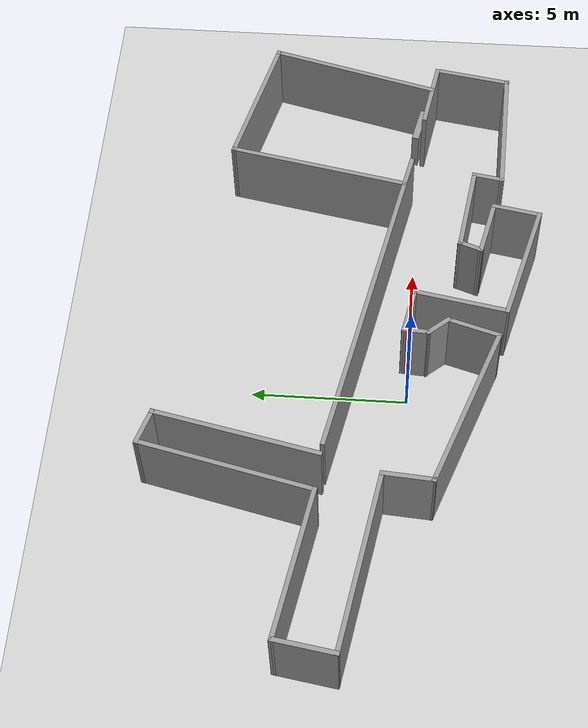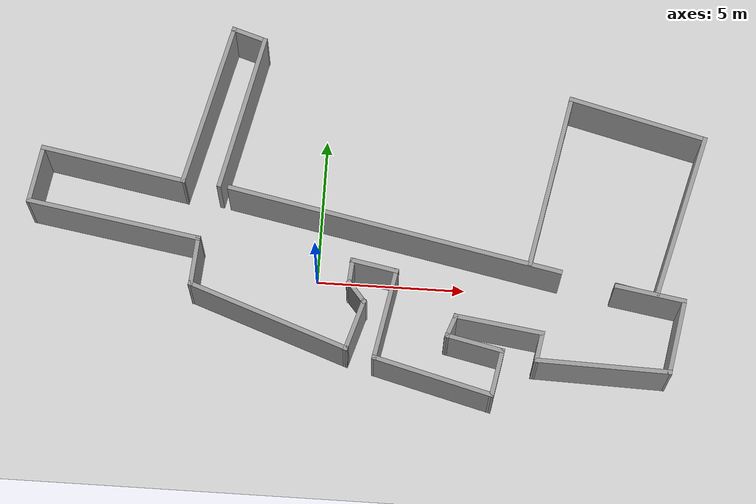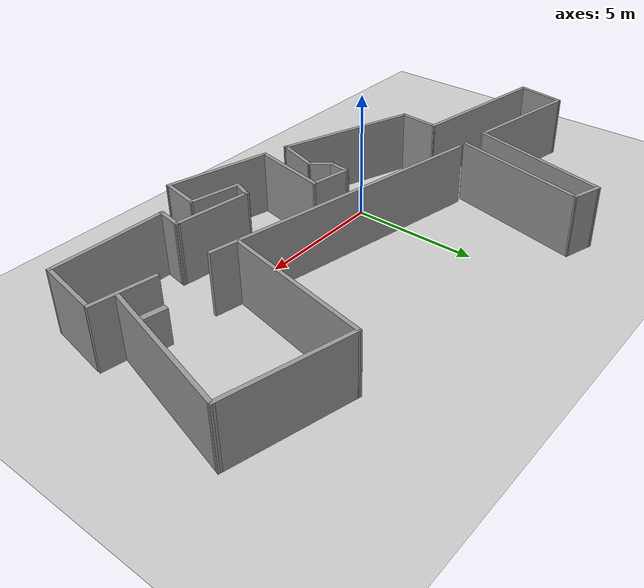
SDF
<sdf version="1.4">
 <world name="default">
  <include><uri>model://sun</uri></include>
  <include><uri>model://ground_plane</uri></include>
  <include><uri>model://sanquirico_simplified</uri><pose>1.5 2 0  0 0 0</pose></include>
  <include><uri>model://Door</uri><pose>10.6 0.03 0.72 0.0 0.0 1.37</pose></include>
 </world>
</sdf>

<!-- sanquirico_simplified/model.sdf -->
<sdf version='1.6'>
  <model name='sanquirico_simplified'>
    <pose frame=''>1.73523 3.04751 0 0 -0 0</pose>
    <link name='Wall_1'>
      <collision name='Wall_1_Collision'>
        <geometry>
          <box>
            <size>11.5 0.15 2.5</size>
          </box>
        </geometry>
        <pose frame=''>0 0 1.25 0 -0 0</pose>
      </collision>
      <visual name='Wall_1_Visual'>
        <pose frame=''>0 0 1.25 0 -0 0</pose>
        <geometry>
          <box>
            <size>11.5 0.15 2.5</size>
          </box>
        </geometry>
        <material>
          <script>
            <uri>file://media/materials/scripts/gazebo.material</uri>
            <name>Gazebo/Grey</name>
          </script>
          <ambient>1 1 1 1</ambient>
        </material>
        <meta>
          <layer>0</layer>
        </meta>
      </visual>
      <pose frame=''>1.00689 -0.659033 0 0 -0 2.94568</pose>
    </link>
    <link name='Wall_10'>
      <collision name='Wall_10_Collision'>
        <geometry>
          <box>
            <size>1.84355 0.15 2.5</size>
          </box>
        </geometry>
        <pose frame=''>0 0 1.25 0 -0 0</pose>
      </collision>
      <visual name='Wall_10_Visual'>
        <pose frame=''>0 0 1.25 0 -0 0</pose>
        <geometry>
          <box>
            <size>1.84355 0.15 2.5</size>
          </box>
        </geometry>
        <material>
          <script>
            <uri>file://media/materials/scripts/gazebo.material</uri>
            <name>Gazebo/Grey</name>
          </script>
          <ambient>1 1 1 1</ambient>
        </material>
        <meta>
          <layer>0</layer>
        </meta>
      </visual>
      <pose frame=''>-0.094359 -3.99337 0 0 -0 1.27761</pose>
    </link>
    <link name='Wall_11'>
      <collision name='Wall_11_Collision'>
        <geometry>
          <box>
            <size>0.952957 0.15 2.5</size>
          </box>
        </geometry>
        <pose frame=''>0 0 1.25 0 -0 0</pose>
      </collision>
      <visual name='Wall_11_Visual'>
        <pose frame=''>0 0 1.25 0 -0 0</pose>
        <geometry>
          <box>
            <size>0.952957 0.15 2.5</size>
          </box>
        </geometry>
        <material>
          <script>
            <uri>file://media/materials/scripts/gazebo.material</uri>
            <name>Gazebo/Grey</name>
          </script>
          <ambient>1 1 1 1</ambient>
        </material>
        <meta>
          <layer>0</layer>
        </meta>
      </visual>
      <pose frame=''>-0.109654 -2.87683 0 0 -0 2.27529</pose>
    </link>
    <link name='Wall_12'>
      <collision name='Wall_12_Collision'>
        <geometry>
          <box>
            <size>0.917199 0.15 2.5</size>
          </box>
        </geometry>
        <pose frame=''>0 0 1.25 0 -0 0</pose>
      </collision>
      <visual name='Wall_12_Visual'>
        <pose frame=''>0 0 1.25 0 -0 0</pose>
        <geometry>
          <box>
            <size>0.917199 0.15 2.5</size>
          </box>
        </geometry>
        <material>
          <script>
            <uri>file://media/materials/scripts/gazebo.material</uri>
            <name>Gazebo/Grey</name>
          </script>
          <ambient>1 1 1 1</ambient>
        </material>
        <meta>
          <layer>0</layer>
        </meta>
      </visual>
      <pose frame=''>-0.339081 -2.18854 0 0 -0 1.49097</pose>
    </link>
    <link name='Wall_13'>
      <collision name='Wall_13_Collision'>
        <geometry>
          <box>
            <size>1.64392 0.15 2.5</size>
          </box>
        </geometry>
        <pose frame=''>0 0 1.25 0 -0 0</pose>
      </collision>
      <visual name='Wall_13_Visual'>
        <pose frame=''>0 0 1.25 0 -0 0</pose>
        <geometry>
          <box>
            <size>1.64392 0.15 2.5</size>
          </box>
        </geometry>
        <material>
          <script>
            <uri>file://media/materials/scripts/gazebo.material</uri>
            <name>Gazebo/Grey</name>
          </script>
          <ambient>1 1 1 1</ambient>
        </material>
        <meta>
          <layer>0</layer>
        </meta>
      </visual>
      <pose frame=''>0.425674 -1.94382 0 0 -0 -0.185348</pose>
    </link>
    <link name='Wall_14'>
      <collision name='Wall_14_Collision'>
        <geometry>
          <box>
            <size>3.16791 0.15 2.5</size>
          </box>
        </geometry>
        <pose frame=''>0 0 1.25 0 -0 0</pose>
      </collision>
      <visual name='Wall_14_Visual'>
        <pose frame=''>0 0 1.25 0 -0 0</pose>
        <geometry>
          <box>
            <size>3.16791 0.15 2.5</size>
          </box>
        </geometry>
        <material>
          <script>
            <uri>file://media/materials/scripts/gazebo.material</uri>
            <name>Gazebo/Grey</name>
          </script>
          <ambient>1 1 1 1</ambient>
        </material>
        <meta>
          <layer>0</layer>
        </meta>
      </visual>
      <pose frame=''>0.884528 -3.5651 0 0 -0 -1.75428</pose>
    </link>
    <link name='Wall_15'>
      <collision name='Wall_15_Collision'>
        <geometry>
          <box>
            <size>4.19358 0.15 2.5</size>
          </box>
        </geometry>
        <pose frame=''>0 0 1.25 0 -0 0</pose>
      </collision>
      <visual name='Wall_15_Visual'>
        <pose frame=''>0 0 1.25 0 -0 0</pose>
        <geometry>
          <box>
            <size>4.19358 0.15 2.5</size>
          </box>
        </geometry>
        <material>
          <script>
            <uri>file://media/materials/scripts/gazebo.material</uri>
            <name>Gazebo/Grey</name>
          </script>
          <ambient>1 1 1 1</ambient>
        </material>
        <meta>
          <layer>0</layer>
        </meta>
      </visual>
      <pose frame=''>2.56699 -5.55347 0 0 -0 -0.252318</pose>
    </link>
    <link name='Wall_16'>
      <collision name='Wall_16_Collision'>
        <geometry>
          <box>
            <size>1.67399 0.15 2.5</size>
          </box>
        </geometry>
        <pose frame=''>0 0 1.25 0 -0 0</pose>
      </collision>
      <visual name='Wall_16_Visual'>
        <pose frame=''>0 0 1.25 0 -0 0</pose>
        <geometry>
          <box>
            <size>1.67399 0.15 2.5</size>
          </box>
        </geometry>
        <material>
          <script>
            <uri>file://media/materials/scripts/gazebo.material</uri>
            <name>Gazebo/Grey</name>
          </script>
          <ambient>1 1 1 1</ambient>
        </material>
        <meta>
          <layer>0</layer>
        </meta>
      </visual>
      <pose frame=''>4.66242 -5.30875 0 0 -0 1.38915</pose>
    </link>
    <link name='Wall_17'>
      <collision name='Wall_17_Collision'>
        <geometry>
          <box>
            <size>2.028 0.15 2.5</size>
          </box>
        </geometry>
        <pose frame=''>0 0 1.25 0 -0 0</pose>
      </collision>
      <visual name='Wall_17_Visual'>
        <pose frame=''>0 0 1.25 0 -0 0</pose>
        <geometry>
          <box>
            <size>2.028 0.15 2.5</size>
          </box>
        </geometry>
        <material>
          <script>
            <uri>file://media/materials/scripts/gazebo.material</uri>
            <name>Gazebo/Grey</name>
          </script>
          <ambient>1 1 1 1</ambient>
        </material>
        <meta>
          <layer>0</layer>
        </meta>
      </visual>
      <pose frame=''>3.88237 -4.36045 0 0 -0 2.92822</pose>
    </link>
    <link name='Wall_18'>
      <collision name='Wall_18_Collision'>
        <geometry>
          <box>
            <size>0.866099 0.15 2.5</size>
          </box>
        </geometry>
        <pose frame=''>0 0 1.25 0 -0 0</pose>
      </collision>
      <visual name='Wall_18_Visual'>
        <pose frame=''>0 0 1.25 0 -0 0</pose>
        <geometry>
          <box>
            <size>0.866099 0.15 2.5</size>
          </box>
        </geometry>
        <material>
          <script>
            <uri>file://media/materials/scripts/gazebo.material</uri>
            <name>Gazebo/Grey</name>
          </script>
          <ambient>1 1 1 1</ambient>
        </material>
        <meta>
          <layer>0</layer>
        </meta>
      </visual>
      <pose frame=''>3.08702 -3.82512 0 0 -0 1.22202</pose>
    </link>
    <link name='Wall_19'>
      <collision name='Wall_19_Collision'>
        <geometry>
          <box>
            <size>3.05285 0.15 2.5</size>
          </box>
        </geometry>
        <pose frame=''>0 0 1.25 0 -0 0</pose>
      </collision>
      <visual name='Wall_19_Visual'>
        <pose frame=''>0 0 1.25 0 -0 0</pose>
        <geometry>
          <box>
            <size>3.05285 0.15 2.5</size>
          </box>
        </geometry>
        <material>
          <script>
            <uri>file://media/materials/scripts/gazebo.material</uri>
            <name>Gazebo/Grey</name>
          </script>
          <ambient>1 1 1 1</ambient>
        </material>
        <meta>
          <layer>0</layer>
        </meta>
      </visual>
      <pose frame=''>4.64713 -3.68747 0 0 -0 -0.137426</pose>
    </link>
    <link name='Wall_2'>
      <collision name='Wall_2_Collision'>
        <geometry>
          <box>
            <size>5.47208 0.15 2.5</size>
          </box>
        </geometry>
        <pose frame=''>0 0 1.25 0 -0 0</pose>
      </collision>
      <visual name='Wall_2_Visual'>
        <pose frame=''>0 0 1.25 0 -0 0</pose>
        <geometry>
          <box>
            <size>5.47208 0.15 2.5</size>
          </box>
        </geometry>
        <material>
          <script>
            <uri>file://media/materials/scripts/gazebo.material</uri>
            <name>Gazebo/Grey</name>
          </script>
          <ambient>1 1 1 1</ambient>
        </material>
        <meta>
          <layer>0</layer>
        </meta>
      </visual>
      <pose frame=''>-4.3617 3.11886 0 0 -0 1.35649</pose>
    </link>
    <link name='Wall_20'>
      <collision name='Wall_20_Collision'>
        <geometry>
          <box>
            <size>1.08037 0.15 2.5</size>
          </box>
        </geometry>
        <pose frame=''>0 0 1.25 0 -0 0</pose>
      </collision>
      <visual name='Wall_20_Visual'>
        <pose frame=''>0 0 1.25 0 -0 0</pose>
        <geometry>
          <box>
            <size>1.08037 0.15 2.5</size>
          </box>
        </geometry>
        <material>
          <script>
            <uri>file://media/materials/scripts/gazebo.material</uri>
            <name>Gazebo/Grey</name>
          </script>
          <ambient>1 1 1 1</ambient>
        </material>
        <meta>
          <layer>0</layer>
        </meta>
      </visual>
      <pose frame=''>6.00839 -4.34516 0 0 -0 -1.73595</pose>
    </link>
    <link name='Wall_21'>
      <collision name='Wall_21_Collision'>
        <geometry>
          <box>
            <size>4.52611 0.15 2.5</size>
          </box>
        </geometry>
        <pose frame=''>0 0 1.25 0 -0 0</pose>
      </collision>
      <visual name='Wall_21_Visual'>
        <pose frame=''>0 0 1.25 0 -0 0</pose>
        <geometry>
          <box>
            <size>4.52611 0.15 2.5</size>
          </box>
        </geometry>
        <material>
          <script>
            <uri>file://media/materials/scripts/gazebo.material</uri>
            <name>Gazebo/Grey</name>
          </script>
          <ambient>1 1 1 1</ambient>
        </material>
        <meta>
          <layer>0</layer>
        </meta>
      </visual>
      <pose frame=''>8.11912 -4.86519 0 0 -0 -0.027965</pose>
    </link>
    <link name='Wall_22'>
      <collision name='Wall_22_Collision'>
        <geometry>
          <box>
            <size>2.4848 0.15 2.5</size>
          </box>
        </geometry>
        <pose frame=''>0 0 1.25 0 -0 0</pose>
      </collision>
      <visual name='Wall_22_Visual'>
        <pose frame=''>0 0 1.25 0 -0 0</pose>
        <geometry>
          <box>
            <size>2.4848 0.15 2.5</size>
          </box>
        </geometry>
        <material>
          <script>
            <uri>file://media/materials/scripts/gazebo.material</uri>
            <name>Gazebo/Grey</name>
          </script>
          <ambient>1 1 1 1</ambient>
        </material>
        <meta>
          <layer>0</layer>
        </meta>
      </visual>
      <pose frame=''>10.5008 -3.77528 0 0 -0 1.40346</pose>
    </link>
    <link name='Wall_24'>
      <collision name='Wall_24_Collision'>
        <geometry>
          <box>
            <size>5.77395 0.15 2.5</size>
          </box>
        </geometry>
        <pose frame=''>0 0 1.25 0 -0 0</pose>
      </collision>
      <visual name='Wall_24_Visual'>
        <pose frame=''>0 0 1.25 0 -0 0</pose>
        <geometry>
          <box>
            <size>5.77395 0.15 2.5</size>
          </box>
        </geometry>
        <material>
          <script>
            <uri>file://media/materials/scripts/gazebo.material</uri>
            <name>Gazebo/Grey</name>
          </script>
          <ambient>1 1 1 1</ambient>
        </material>
        <meta>
          <layer>0</layer>
        </meta>
      </visual>
      <pose frame=''>10.5205 0.42692 0 0 -0 1.3179</pose>
    </link>
    <link name='Wall_25'>
      <collision name='Wall_25_Collision'>
        <geometry>
          <box>
            <size>4.81669 0.15 2.5</size>
          </box>
        </geometry>
        <pose frame=''>0 0 1.25 0 -0 0</pose>
      </collision>
      <visual name='Wall_25_Visual'>
        <pose frame=''>0 0 1.25 0 -0 0</pose>
        <geometry>
          <box>
            <size>4.81669 0.15 2.5</size>
          </box>
        </geometry>
        <material>
          <script>
            <uri>file://media/materials/scripts/gazebo.material</uri>
            <name>Gazebo/Grey</name>
          </script>
          <ambient>1 1 1 1</ambient>
        </material>
        <meta>
          <layer>0</layer>
        </meta>
      </visual>
      <pose frame=''>8.96035 3.71537 0 0 -0 2.89661</pose>
    </link>
    <link name='Wall_26'>
      <collision name='Wall_26_Collision'>
        <geometry>
          <box>
            <size>6.07132 0.15 2.5</size>
          </box>
        </geometry>
        <pose frame=''>0 0 1.25 0 -0 0</pose>
      </collision>
      <visual name='Wall_26_Visual'>
        <pose frame=''>0 0 1.25 0 -0 0</pose>
        <geometry>
          <box>
            <size>6.07132 0.15 2.5</size>
          </box>
        </geometry>
        <material>
          <script>
            <uri>file://media/materials/scripts/gazebo.material</uri>
            <name>Gazebo/Grey</name>
          </script>
          <ambient>1 1 1 1</ambient>
        </material>
        <meta>
          <layer>0</layer>
        </meta>
      </visual>
      <pose frame=''>6.13075 1.37522 0 0 -0 -1.76313</pose>
    </link>
    <link name='Wall_3'>
      <collision name='Wall_3_Collision'>
        <geometry>
          <box>
            <size>1.27229 0.15 2.5</size>
          </box>
        </geometry>
        <pose frame=''>0 0 1.25 0 -0 0</pose>
      </collision>
      <visual name='Wall_3_Visual'>
        <pose frame=''>0 0 1.25 0 -0 0</pose>
        <geometry>
          <box>
            <size>1.27229 0.15 2.5</size>
          </box>
        </geometry>
        <material>
          <script>
            <uri>file://media/materials/scripts/gazebo.material</uri>
            <name>Gazebo/Grey</name>
          </script>
          <ambient>1 1 1 1</ambient>
        </material>
        <meta>
          <layer>0</layer>
        </meta>
      </visual>
      <pose frame=''>-4.33111 5.88727 0 0 -0 2.83708</pose>
    </link>
    <link name='Wall_30'>
      <collision name='Wall_30_Collision'>
        <geometry>
          <box>
            <size>2.41312 0.15 2.5</size>
          </box>
        </geometry>
        <pose frame=''>0 0 1.25 0 -0 0</pose>
      </collision>
      <visual name='Wall_30_Visual'>
        <pose frame=''>0 0 1.25 0 -0 0</pose>
        <geometry>
          <box>
            <size>2.41312 0.15 2.5</size>
          </box>
        </geometry>
        <material>
          <script>
            <uri>file://media/materials/scripts/gazebo.material</uri>
            <name>Gazebo/Grey</name>
          </script>
          <ambient>1 1 1 1</ambient>
        </material>
        <meta>
          <layer>0</layer>
        </meta>
      </visual>
      <pose frame=''>9.58867 -2.31036 0 0 -0 -0.163179</pose>
    </link>
    <link name='Wall_4'>
      <collision name='Wall_4_Collision'>
        <geometry>
          <box>
            <size>5.77436 0.15 2.5</size>
          </box>
        </geometry>
        <pose frame=''>0 0 1.25 0 -0 0</pose>
      </collision>
      <visual name='Wall_4_Visual'>
        <pose frame=''>0 0 1.25 0 -0 0</pose>
        <geometry>
          <box>
            <size>5.77436 0.15 2.5</size>
          </box>
        </geometry>
        <material>
          <script>
            <uri>file://media/materials/scripts/gazebo.material</uri>
            <name>Gazebo/Grey</name>
          </script>
          <ambient>1 1 1 1</ambient>
        </material>
        <meta>
          <layer>0</layer>
        </meta>
      </visual>
      <pose frame=''>-5.50883 3.3177 0 0 -0 -1.80126</pose>
    </link>
    <link name='Wall_5'>
      <collision name='Wall_5_Collision'>
        <geometry>
          <box>
            <size>4.99833 0.15 2.5</size>
          </box>
        </geometry>
        <pose frame=''>0 0 1.25 0 -0 0</pose>
      </collision>
      <visual name='Wall_5_Visual'>
        <pose frame=''>0 0 1.25 0 -0 0</pose>
        <geometry>
          <box>
            <size>4.99833 0.15 2.5</size>
          </box>
        </geometry>
        <material>
          <script>
            <uri>file://media/materials/scripts/gazebo.material</uri>
            <name>Gazebo/Grey</name>
          </script>
          <ambient>1 1 1 1</ambient>
        </material>
        <meta>
          <layer>0</layer>
        </meta>
      </visual>
      <pose frame=''>-8.53726 1.00813 0 0 -0 2.964</pose>
    </link>
    <link name='Wall_6'>
      <collision name='Wall_6_Collision'>
        <geometry>
          <box>
            <size>2.04091 0.15 2.5</size>
          </box>
        </geometry>
        <pose frame=''>0 0 1.25 0 -0 0</pose>
      </collision>
      <visual name='Wall_6_Visual'>
        <pose frame=''>0 0 1.25 0 -0 0</pose>
        <geometry>
          <box>
            <size>2.04091 0.15 2.5</size>
          </box>
        </geometry>
        <material>
          <script>
            <uri>file://media/materials/scripts/gazebo.material</uri>
            <name>Gazebo/Grey</name>
          </script>
          <ambient>1 1 1 1</ambient>
        </material>
        <meta>
          <layer>0</layer>
        </meta>
      </visual>
      <pose frame=''>-11.0763 0.503395 0 0 -0 -1.73328</pose>
    </link>
    <link name='Wall_7'>
      <collision name='Wall_7_Collision'>
        <geometry>
          <box>
            <size>5.97862 0.15 2.5</size>
          </box>
        </geometry>
        <pose frame=''>0 0 1.25 0 -0 0</pose>
      </collision>
      <visual name='Wall_7_Visual'>
        <pose frame=''>0 0 1.25 0 -0 0</pose>
        <geometry>
          <box>
            <size>5.97862 0.15 2.5</size>
          </box>
        </geometry>
        <material>
          <script>
            <uri>file://media/materials/scripts/gazebo.material</uri>
            <name>Gazebo/Grey</name>
          </script>
          <ambient>1 1 1 1</ambient>
        </material>
        <meta>
          <layer>0</layer>
        </meta>
      </visual>
      <pose frame=''>-8.35372 -0.903755 0 0 -0 -0.163423</pose>
    </link>
    <link name='Wall_8'>
      <collision name='Wall_8_Collision'>
        <geometry>
          <box>
            <size>1.71489 0.15 2.5</size>
          </box>
        </geometry>
        <pose frame=''>0 0 1.25 0 -0 0</pose>
      </collision>
      <visual name='Wall_8_Visual'>
        <pose frame=''>0 0 1.25 0 -0 0</pose>
        <geometry>
          <box>
            <size>1.71489 0.15 2.5</size>
          </box>
        </geometry>
        <material>
          <script>
            <uri>file://media/materials/scripts/gazebo.material</uri>
            <name>Gazebo/Grey</name>
          </script>
          <ambient>1 1 1 1</ambient>
        </material>
        <meta>
          <layer>0</layer>
        </meta>
      </visual>
      <pose frame=''>-5.53942 -2.15795 0 0 -0 -1.64907</pose>
    </link>
    <link name='Wall_9'>
      <collision name='Wall_9_Collision'>
        <geometry>
          <box>
            <size>5.73261 0.15 2.5</size>
          </box>
        </geometry>
        <pose frame=''>0 0 1.25 0 -0 0</pose>
      </collision>
      <visual name='Wall_9_Visual'>
        <pose frame=''>0 0 1.25 0 -0 0</pose>
        <geometry>
          <box>
            <size>5.73261 0.15 2.5</size>
          </box>
        </geometry>
        <material>
          <script>
            <uri>file://media/materials/scripts/gazebo.material</uri>
            <name>Gazebo/Grey</name>
          </script>
          <ambient>1 1 1 1</ambient>
        </material>
        <meta>
          <layer>0</layer>
        </meta>
      </visual>
      <pose frame=''>-2.96984 -3.87101 0 0 -0 -0.340812</pose>
    </link>
    <static>1</static>
  </model>
</sdf>

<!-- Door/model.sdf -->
<sdf version='1.6'>
  <model name='Door'>
    <link name='link'>
      <inertial>
        <mass>1</mass>
        <inertia>
          <ixx>0.166667</ixx>
          <ixy>0</ixy>
          <ixz>0</ixz>
          <iyy>0.166667</iyy>
          <iyz>0</iyz>
          <izz>0.166667</izz>
        </inertia>
      </inertial>
      <self_collide>0</self_collide>
      <enable_wind>0</enable_wind>
      <kinematic>0</kinematic>
      <pose frame=''>0 0 0 0 -0 0</pose>
      <visual name='visual'>
        <geometry>
          <box>
            <size>0.237693 1.29129 1.43822</size>
          </box>
        </geometry>
        <material>
          <script>
            <name>Gazebo/Grey</name>
            <uri>file://media/materials/scripts/gazebo.material</uri>
          </script>
        </material>
        <pose frame=''>0 0 0 0 -0 0</pose>
        <transparency>0</transparency>
        <cast_shadows>1</cast_shadows>
      </visual>
      <collision name='collision'>
        <laser_retro>0</laser_retro>
        <max_contacts>10</max_contacts>
        <pose frame=''>0 0 0 0 -0 0</pose>
        <geometry>
          <box>
            <size>0.237693 1.29129 1.43822</size>
          </box>
        </geometry>
        <surface>
          <friction>
            <ode>
              <mu>1</mu>
              <mu2>1</mu2>
              <fdir1>0 0 0</fdir1>
              <slip1>0</slip1>
              <slip2>0</slip2>
            </ode>
            <torsional>
              <coefficient>1</coefficient>
              <patch_radius>0</patch_radius>
              <surface_radius>0</surface_radius>
              <use_patch_radius>1</use_patch_radius>
              <ode>
                <slip>0</slip>
              </ode>
            </torsional>
          </friction>
          <bounce>
            <restitution_coefficient>0</restitution_coefficient>
            <threshold>1e+06</threshold>
          </bounce>
          <contact>
            <collide_without_contact>0</collide_without_contact>
            <collide_without_contact_bitmask>1</collide_without_contact_bitmask>
            <collide_bitmask>1</collide_bitmask>
            <ode>
              <soft_cfm>0</soft_cfm>
              <soft_erp>0.2</soft_erp>
              <kp>1e+13</kp>
              <kd>1</kd>
              <max_vel>0.01</max_vel>
              <min_depth>0</min_depth>
            </ode>
            <bullet>
              <split_impulse>1</split_impulse>
              <split_impulse_penetration_threshold>-0.01</split_impulse_penetration_threshold>
              <soft_cfm>0</soft_cfm>
              <soft_erp>0.2</soft_erp>
              <kp>1e+13</kp>
              <kd>1</kd>
            </bullet>
          </contact>
        </surface>
      </collision>
    </link>
    <static>0</static>
    <allow_auto_disable>1</allow_auto_disable>
  </model>
</sdf>
